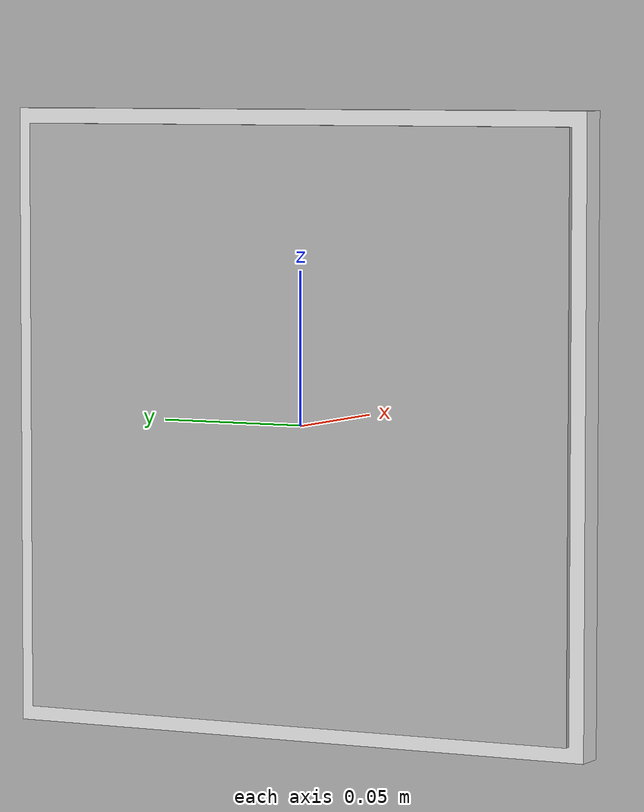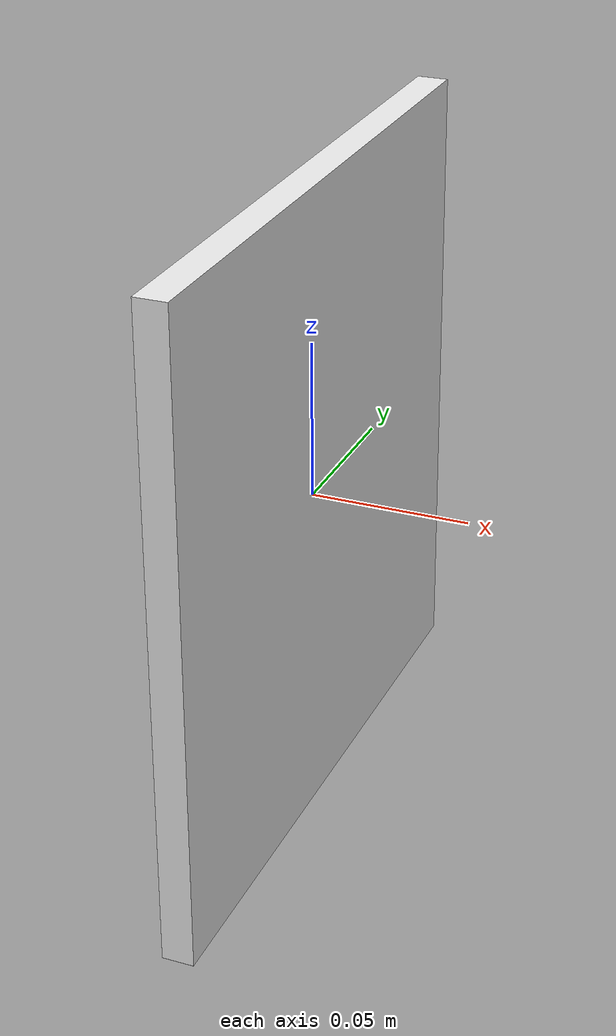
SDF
<?xml version="1.0"?>
<sdf version="1.6">
  <model name="aprilgrid_6x6_tag36h11_24mm_a4">
    <static>true</static>
    <link name="board">
      <!-- Active datum: 6*0.024 + 5*0.0072 = 0.1800 m.
           Symmetric corner marks add one 0.0072 m gap on every side. -->
      <collision name="plate_collision">
        <geometry><box><size>0.010 0.2044 0.2044</size></box></geometry>
      </collision>
      <visual name="plate_backing">
        <geometry><box><size>0.010 0.2044 0.2044</size></box></geometry>
        <material><script><uri>file://media/materials/scripts/gazebo.material</uri><name>Gazebo/White</name></script></material>
      </visual>
      <visual name="official_aprilgrid_target">
        <pose>-0.0061 0 0 0 0 0</pose>
        <geometry><box><size>0.002 0.1944 0.1944</size></box></geometry>
        <cast_shadows>false</cast_shadows>
        <material>
          <script>
            <uri>model://aprilgrid_6x6_tag36h11_24mm_a4/materials/scripts</uri>
            <uri>model://aprilgrid_6x6_tag36h11_24mm_a4/materials/textures</uri>
            <name>XGC2/AprilGrid6x6Tag36h11_24mmA4</name>
          </script>
        </material>
      </visual>
    </link>
  </model>
</sdf>
